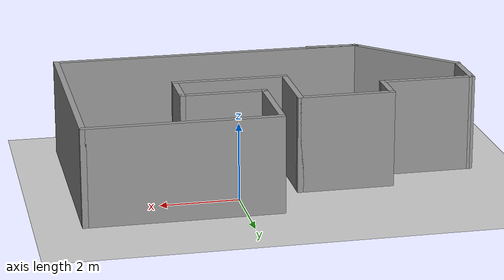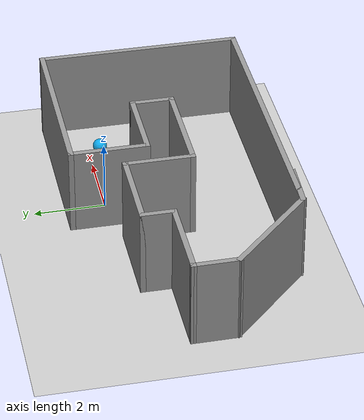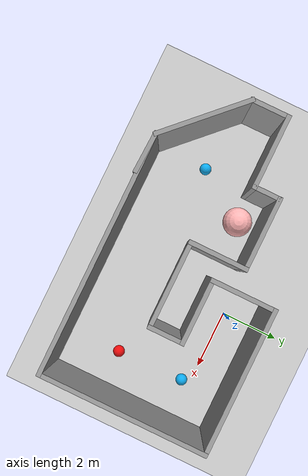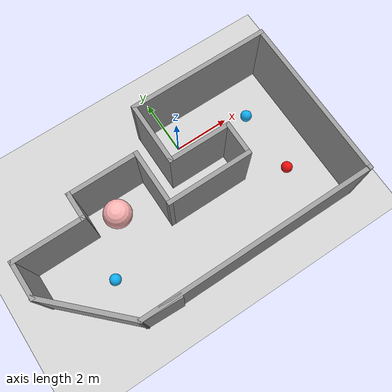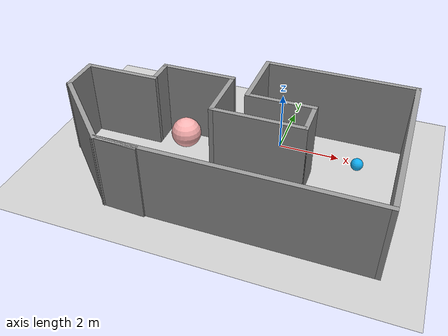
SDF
<sdf version="1.6">
 <world name="default">
  <light name="sun" type="directional">
   <pose>0 0 10 0 -0 0</pose>
   <diffuse>0.8 0.8 0.8 1</diffuse>
   <specular>0.2 0.2 0.2 1</specular>
   <attenuation>
    <range>1000</range>
    <constant>0.9</constant>
    <linear>0.01</linear>
    <quadratic>0.001</quadratic>
   </attenuation>
   <direction>-0.5 0.1 -0.9</direction>
  </light>
  <model name="ground_plane">
   <static>1</static>
   <link name="link">
    <collision name="collision">
     <geometry><plane><normal>0 0 1</normal><size>100 100</size></plane></geometry>
     <surface>
      <contact><collide_bitmask>65535</collide_bitmask></contact>
      <friction><ode><mu>100</mu><mu2>50</mu2></ode></friction>
     </surface>
    </collision>
    <visual name="visual">
     <cast_shadows>0</cast_shadows>
     <geometry><plane><normal>0 0 1</normal><size>100 100</size></plane></geometry>
     <material>
      <script><uri>file://media/materials/scripts/gazebo.material</uri><name>Gazebo/Grey</name></script>
     </material>
    </visual>
   </link>
  </model>
  <gravity>0 0 -9.8</gravity>
  <magnetic_field>6e-06 2.3e-05 -4.2e-05</magnetic_field>
  <atmosphere type="adiabatic"/>
  <physics name="default_physics" default="0" type="ode">
   <max_step_size>0.001</max_step_size>
   <real_time_factor>1</real_time_factor>
   <real_time_update_rate>1000</real_time_update_rate>
  </physics>
  <scene><ambient>0.4 0.4 0.4 1</ambient><background>0.7 0.7 0.7 1</background><shadows>1</shadows></scene>
  <spherical_coordinates>
   <surface_model>EARTH_WGS84</surface_model>
   <latitude_deg>0</latitude_deg>
   <longitude_deg>0</longitude_deg>
   <elevation>0</elevation>
   <heading_deg>0</heading_deg>
  </spherical_coordinates>
  <model name="closed_building">
   <pose>-1.17541 -1.76635 0 0 -0 0</pose>
   <link name="Wall_0">
    <collision name="Wall_0_Collision">
     <geometry><box><size>3.25 0.15 2.5</size></box></geometry>
     <pose>0 0 1.25 0 -0 0</pose>
    </collision>
    <visual name="Wall_0_Visual">
     <pose>0 0 1.25 0 -0 0</pose>
     <geometry><box><size>3.25 0.15 2.5</size></box></geometry>
     <material>
      <script><uri>file://media/materials/scripts/gazebo.material</uri><name>Gazebo/Grey</name></script>
      <ambient>1 1 1 1</ambient>
     </material>
     <meta><layer>0</layer></meta>
    </visual>
    <pose>-4.03447 -1.67669 0 0 0 -0.785398</pose>
   </link>
   <link name="Wall_10">
    <collision name="Wall_10_Collision">
     <geometry><box><size>2 0.15 2.5</size></box></geometry>
     <pose>0 0 1.25 0 -0 0</pose>
    </collision>
    <visual name="Wall_10_Visual">
     <pose>0 0 1.25 0 -0 0</pose>
     <geometry><box><size>2 0.15 2.5</size></box></geometry>
     <material>
      <script><uri>file://media/materials/scripts/gazebo.material</uri><name>Gazebo/Grey</name></script>
      <ambient>1 1 1 1</ambient>
     </material>
     <meta><layer>0</layer></meta>
    </visual>
    <pose>-0.438452 0.552296 0 0 -0 1.5708</pose>
   </link>
   <link name="Wall_11">
    <collision name="Wall_11_Collision">
     <geometry><box><size>2.5 0.15 2.5</size></box></geometry>
     <pose>0 0 1.25 0 -0 0</pose>
    </collision>
    <visual name="Wall_11_Visual">
     <pose>0 0 1.25 0 -0 0</pose>
     <geometry><box><size>2.5 0.15 2.5</size></box></geometry>
     <material>
      <script><uri>file://media/materials/scripts/gazebo.material</uri><name>Gazebo/Grey</name></script>
      <ambient>1 1 1 1</ambient>
     </material>
     <meta><layer>0</layer></meta>
    </visual>
    <pose>-1.61345 1.4773 0 0 -0 3.14159</pose>
   </link>
   <link name="Wall_12">
    <collision name="Wall_12_Collision">
     <geometry><box><size>1 0.15 2.5</size></box></geometry>
     <pose>0 0 1.25 0 -0 0</pose>
    </collision>
    <visual name="Wall_12_Visual">
     <pose>0 0 1.25 0 -0 0</pose>
     <geometry><box><size>1 0.15 2.5</size></box></geometry>
     <material>
      <script><uri>file://media/materials/scripts/gazebo.material</uri><name>Gazebo/Grey</name></script>
      <ambient>1 1 1 1</ambient>
     </material>
     <meta><layer>0</layer></meta>
    </visual>
    <pose>-2.78845 1.0523 0 0 0 -1.5708</pose>
   </link>
   <link name="Wall_13">
    <collision name="Wall_13_Collision">
     <geometry><box><size>2.5 0.15 2.5</size></box></geometry>
     <pose>0 0 1.25 0 -0 0</pose>
    </collision>
    <visual name="Wall_13_Visual">
     <pose>0 0 1.25 0 -0 0</pose>
     <geometry><box><size>2.5 0.15 2.5</size></box></geometry>
     <material>
      <script><uri>file://media/materials/scripts/gazebo.material</uri><name>Gazebo/Grey</name></script>
      <ambient>1 1 1 1</ambient>
     </material>
     <meta><layer>0</layer></meta>
    </visual>
    <pose>-3.96345 0.627296 0 0 -0 3.14159</pose>
   </link>
   <link name="Wall_14">
    <collision name="Wall_14_Collision">
     <geometry><box><size>1.358 0.15 2.5</size></box></geometry>
     <pose>0 0 1.25 0 -0 0</pose>
    </collision>
    <visual name="Wall_14_Visual">
     <pose>0 0 1.25 0 -0 0</pose>
     <geometry><box><size>1.358 0.15 2.5</size></box></geometry>
     <material>
      <script><uri>file://media/materials/scripts/gazebo.material</uri><name>Gazebo/Grey</name></script>
      <ambient>1 1 1 1</ambient>
     </material>
     <meta><layer>0</layer></meta>
    </visual>
    <pose>-5.13447 0.023312 0 0 0 -1.5642</pose>
   </link>
   <link name="Wall_2">
    <collision name="Wall_2_Collision">
     <geometry><box><size>1.42053 0.15 2.5</size></box></geometry>
     <pose>0 0 1.25 0 -0 0</pose>
    </collision>
    <visual name="Wall_2_Visual">
     <pose>0 0 1.25 0 -0 0</pose>
     <geometry><box><size>1.42053 0.15 2.5</size></box></geometry>
     <material>
      <script><uri>file://media/materials/scripts/gazebo.material</uri><name>Gazebo/Grey</name></script>
      <ambient>1 1 1 1</ambient>
     </material>
     <meta><layer>0</layer></meta>
    </visual>
    <pose>-2.30371 -2.79851 0 0 -0 3.10096</pose>
   </link>
   <link name="Wall_3">
    <collision name="Wall_3_Collision">
     <geometry><box><size>8.25 0.15 2.5</size></box></geometry>
     <pose>0 0 1.25 0 -0 0</pose>
    </collision>
    <visual name="Wall_3_Visual">
     <pose>0 0 1.25 0 -0 0</pose>
     <geometry><box><size>8.25 0.15 2.5</size></box></geometry>
     <material>
      <script><uri>file://media/materials/scripts/gazebo.material</uri><name>Gazebo/Grey</name></script>
      <ambient>1 1 1 1</ambient>
     </material>
     <meta><layer>0</layer></meta>
    </visual>
    <pose>1.11155 -2.7727 0 0 -0 0</pose>
   </link>
   <link name="Wall_4">
    <collision name="Wall_4_Collision">
     <geometry><box><size>5.75 0.15 2.5</size></box></geometry>
     <pose>0 0 1.25 0 -0 0</pose>
    </collision>
    <visual name="Wall_4_Visual">
     <pose>0 0 1.25 0 -0 0</pose>
     <geometry><box><size>5.75 0.15 2.5</size></box></geometry>
     <material>
      <script><uri>file://media/materials/scripts/gazebo.material</uri><name>Gazebo/Grey</name></script>
      <ambient>1 1 1 1</ambient>
     </material>
     <meta><layer>0</layer></meta>
    </visual>
    <pose>5.16155 0.027296 0 0 -0 1.5708</pose>
   </link>
   <link name="Wall_5">
    <collision name="Wall_5_Collision">
     <geometry><box><size>5 0.15 2.5</size></box></geometry>
     <pose>0 0 1.25 0 -0 0</pose>
    </collision>
    <visual name="Wall_5_Visual">
     <pose>0 0 1.25 0 -0 0</pose>
     <geometry><box><size>5 0.15 2.5</size></box></geometry>
     <material>
      <script><uri>file://media/materials/scripts/gazebo.material</uri><name>Gazebo/Grey</name></script>
      <ambient>1 1 1 1</ambient>
     </material>
     <meta><layer>0</layer></meta>
    </visual>
    <pose>2.73655 2.8273 0 0 -0 3.14159</pose>
   </link>
   <link name="Wall_6">
    <collision name="Wall_6_Collision">
     <geometry><box><size>2.25 0.15 2.5</size></box></geometry>
     <pose>0 0 1.25 0 -0 0</pose>
    </collision>
    <visual name="Wall_6_Visual">
     <pose>0 0 1.25 0 -0 0</pose>
     <geometry><box><size>2.25 0.15 2.5</size></box></geometry>
     <material>
      <script><uri>file://media/materials/scripts/gazebo.material</uri><name>Gazebo/Grey</name></script>
      <ambient>1 1 1 1</ambient>
     </material>
     <meta><layer>0</layer></meta>
    </visual>
    <pose>0.311548 1.7773 0 0 0 -1.5708</pose>
   </link>
   <link name="Wall_7">
    <collision name="Wall_7_Collision">
     <geometry><box><size>2.25 0.15 2.5</size></box></geometry>
     <pose>0 0 1.25 0 -0 0</pose>
    </collision>
    <visual name="Wall_7_Visual">
     <pose>0 0 1.25 0 -0 0</pose>
     <geometry><box><size>2.25 0.15 2.5</size></box></geometry>
     <material>
      <script><uri>file://media/materials/scripts/gazebo.material</uri><name>Gazebo/Grey</name></script>
      <ambient>1 1 1 1</ambient>
     </material>
     <meta><layer>0</layer></meta>
    </visual>
    <pose>1.36155 0.727296 0 0 -0 0</pose>
   </link>
   <link name="Wall_8">
    <collision name="Wall_8_Collision">
     <geometry><box><size>1.25 0.15 2.5</size></box></geometry>
     <pose>0 0 1.25 0 -0 0</pose>
    </collision>
    <visual name="Wall_8_Visual">
     <pose>0 0 1.25 0 -0 0</pose>
     <geometry><box><size>1.25 0.15 2.5</size></box></geometry>
     <material>
      <script><uri>file://media/materials/scripts/gazebo.material</uri><name>Gazebo/Grey</name></script>
      <ambient>1 1 1 1</ambient>
     </material>
     <meta><layer>0</layer></meta>
    </visual>
    <pose>2.41155 0.177296 0 0 0 -1.5708</pose>
   </link>
   <link name="Wall_9">
    <collision name="Wall_9_Collision">
     <geometry><box><size>3 0.15 2.5</size></box></geometry>
     <pose>0 0 1.25 0 -0 0</pose>
    </collision>
    <visual name="Wall_9_Visual">
     <pose>0 0 1.25 0 -0 0</pose>
     <geometry><box><size>3 0.15 2.5</size></box></geometry>
     <material>
      <script><uri>file://media/materials/scripts/gazebo.material</uri><name>Gazebo/Grey</name></script>
      <ambient>1 1 1 1</ambient>
     </material>
     <meta><layer>0</layer></meta>
    </visual>
    <pose>0.986548 -0.372704 0 0 -0 3.14159</pose>
   </link>
   <static>1</static>
  </model>
  <audio><device>default</device></audio>
  <model name="unit_sphere_blue_small_new">
   <link name="link">
    <inertial>
     <mass>1</mass>
     <inertia><ixx>0.1</ixx><ixy>0</ixy><ixz>0</ixz><iyy>0.1</iyy><iyz>0</iyz><izz>0.1</izz></inertia>
    </inertial>
    <pose>-0.259583 0.271233 -0.289399 0 -0 0</pose>
    <visual name="visual">
     <geometry><sphere><radius>0.2</radius></sphere></geometry>
     <material>
      <script><name>Gazebo/Grey</name><uri>file://media/materials/scripts/gazebo.material</uri></script>
      <ambient>1 0.3 0.3 1</ambient>
      <shader type="vertex"><normal_map>__default__</normal_map></shader>
      <diffuse>0 0.7 1 1</diffuse>
      <specular>0 0.01 1 1</specular>
      <emissive>0 0 1 1</emissive>
     </material>
     <transparency>0.11</transparency>
    </visual>
    <collision name="collision">
     <geometry><sphere><radius>0.2</radius></sphere></geometry>
     <surface>
      <friction>
       <ode><mu>1</mu><mu2>1</mu2><fdir1>0 0 0</fdir1><slip1>0</slip1><slip2>0</slip2></ode>
       <torsional>
        <coefficient>1</coefficient>
        <patch_radius>0</patch_radius>
        <surface_radius>0</surface_radius>
        <use_patch_radius>1</use_patch_radius>
        <ode><slip>0</slip></ode>
       </torsional>
      </friction>
      <bounce><restitution_coefficient>0</restitution_coefficient><threshold>1e+06</threshold></bounce>
      <contact>
       <collide_without_contact>0</collide_without_contact>
       <collide_without_contact_bitmask>1</collide_without_contact_bitmask>
       <collide_bitmask>1</collide_bitmask>
       <ode>
        <soft_cfm>0</soft_cfm>
        <soft_erp>0.2</soft_erp>
        <kp>1e+13</kp>
        <kd>1</kd>
        <max_vel>0.01</max_vel>
        <min_depth>0</min_depth>
       </ode>
       <bullet>
        <split_impulse>1</split_impulse>
        <split_impulse_penetration_threshold>-0.01</split_impulse_penetration_threshold>
        <soft_cfm>0</soft_cfm>
        <soft_erp>0.2</soft_erp>
        <kp>1e+13</kp>
        <kd>1</kd>
       </bullet>
      </contact>
     </surface>
    </collision>
   </link>
   <static>0</static>
   <pose>2.921 -0.605795 0.486362 0.001723 0.009844 2e-05</pose>
  </model>
  <model name="unit_sphere_red_small_new">
   <link name="link">
    <inertial>
     <mass>1</mass>
     <inertia><ixx>0.1</ixx><ixy>0</ixy><ixz>0</ixz><iyy>0.1</iyy><iyz>0</iyz><izz>0.1</izz></inertia>
    </inertial>
    <pose>-0.259583 0.271233 -0.289399 0 -0 0</pose>
    <visual name="visual">
     <geometry><sphere><radius>0.2</radius></sphere></geometry>
     <material>
      <script><name>Gazebo/Grey</name><uri>file://media/materials/scripts/gazebo.material</uri></script>
      <ambient>1 0 0 0</ambient>
      <shader type="vertex"><normal_map>__default__</normal_map></shader>
      <diffuse>1 0 0 0</diffuse>
      <specular>1 0.01 0.01 1</specular>
      <emissive>1 0 0 0</emissive>
     </material>
     <transparency>0.11</transparency>
    </visual>
    <collision name="collision">
     <geometry><sphere><radius>0.2</radius></sphere></geometry>
     <surface>
      <friction>
       <ode><mu>1</mu><mu2>1</mu2><fdir1>0 0 0</fdir1><slip1>0</slip1><slip2>0</slip2></ode>
       <torsional>
        <coefficient>1</coefficient>
        <patch_radius>0</patch_radius>
        <surface_radius>0</surface_radius>
        <use_patch_radius>1</use_patch_radius>
        <ode><slip>0</slip></ode>
       </torsional>
      </friction>
      <bounce><restitution_coefficient>0</restitution_coefficient><threshold>1e+06</threshold></bounce>
      <contact>
       <collide_without_contact>0</collide_without_contact>
       <collide_without_contact_bitmask>1</collide_without_contact_bitmask>
       <collide_bitmask>1</collide_bitmask>
       <ode>
        <soft_cfm>0</soft_cfm>
        <soft_erp>0.2</soft_erp>
        <kp>1e+13</kp>
        <kd>1</kd>
        <max_vel>0.01</max_vel>
        <min_depth>0</min_depth>
       </ode>
       <bullet>
        <split_impulse>1</split_impulse>
        <split_impulse_penetration_threshold>-0.01</split_impulse_penetration_threshold>
        <soft_cfm>0</soft_cfm>
        <soft_erp>0.2</soft_erp>
        <kp>1e+13</kp>
        <kd>1</kd>
       </bullet>
      </contact>
     </surface>
    </collision>
   </link>
   <static>0</static>
   <pose>2.97519 -2.96173 0.489399 0 -0 0</pose>
  </model>
  <model name="unit_sphere_0">
   <link name="link">
    <inertial>
     <mass>1</mass>
     <inertia><ixx>0.1</ixx><ixy>0</ixy><ixz>0</ixz><iyy>0.1</iyy><iyz>0</iyz><izz>0.1</izz></inertia>
    </inertial>
    <visual name="visual">
     <geometry><sphere><radius>0.5</radius></sphere></geometry>
     <material>
      <script><name>Gazebo/Grey</name><uri>file://media/materials/scripts/gazebo.material</uri></script>
      <ambient>1 0 0 0</ambient>
      <shader type="vertex"><normal_map>__default__</normal_map></shader>
      <diffuse>1 0.7 0.7 1</diffuse>
      <specular>1 0.01 0.01 1</specular>
      <emissive>0 0 0 1</emissive>
     </material>
    </visual>
    <collision name="collision">
     <geometry><sphere><radius>0.5</radius></sphere></geometry>
     <surface>
      <friction>
       <ode><mu>1</mu><mu2>1</mu2><fdir1>0 0 0</fdir1><slip1>0</slip1><slip2>0</slip2></ode>
       <torsional>
        <coefficient>1</coefficient>
        <patch_radius>0</patch_radius>
        <surface_radius>0</surface_radius>
        <use_patch_radius>1</use_patch_radius>
        <ode><slip>0</slip></ode>
       </torsional>
      </friction>
      <bounce><restitution_coefficient>0</restitution_coefficient><threshold>1e+06</threshold></bounce>
      <contact>
       <collide_without_contact>0</collide_without_contact>
       <collide_without_contact_bitmask>1</collide_without_contact_bitmask>
       <collide_bitmask>1</collide_bitmask>
       <ode>
        <soft_cfm>0</soft_cfm>
        <soft_erp>0.2</soft_erp>
        <kp>1e+13</kp>
        <kd>1</kd>
        <max_vel>0.01</max_vel>
        <min_depth>0</min_depth>
       </ode>
       <bullet>
        <split_impulse>1</split_impulse>
        <split_impulse_penetration_threshold>-0.01</split_impulse_penetration_threshold>
        <soft_cfm>0</soft_cfm>
        <soft_erp>0.2</soft_erp>
        <kp>1e+13</kp>
        <kd>1</kd>
       </bullet>
      </contact>
     </surface>
    </collision>
   </link>
   <static>0</static>
   <pose>-3.01398 -0.989237 0.5 0 -0 0</pose>
  </model>
  <model name="unit_sphere_blue_small_new_0">
   <link name="link">
    <inertial>
     <mass>1</mass>
     <inertia><ixx>0.1</ixx><ixy>0</ixy><ixz>0</ixz><iyy>0.1</iyy><iyz>0</iyz><izz>0.1</izz></inertia>
    </inertial>
    <pose>-0.259583 0.271233 -0.289399 0 -0 0</pose>
    <visual name="visual">
     <geometry><sphere><radius>0.2</radius></sphere></geometry>
     <material>
      <script><name>Gazebo/Grey</name><uri>file://media/materials/scripts/gazebo.material</uri></script>
      <ambient>1 0.3 0.3 1</ambient>
      <shader type="vertex"><normal_map>__default__</normal_map></shader>
      <diffuse>0 0.7 1 1</diffuse>
      <specular>0 0.01 1 1</specular>
      <emissive>0 0 1 1</emissive>
     </material>
     <transparency>0.11</transparency>
    </visual>
    <collision name="collision">
     <geometry><sphere><radius>0.2</radius></sphere></geometry>
     <surface>
      <friction>
       <ode><mu>1</mu><mu2>1</mu2><fdir1>0 0 0</fdir1><slip1>0</slip1><slip2>0</slip2></ode>
       <torsional>
        <coefficient>1</coefficient>
        <patch_radius>0</patch_radius>
        <surface_radius>0</surface_radius>
        <use_patch_radius>1</use_patch_radius>
        <ode><slip>0</slip></ode>
       </torsional>
      </friction>
      <bounce><restitution_coefficient>0</restitution_coefficient><threshold>1e+06</threshold></bounce>
      <contact>
       <collide_without_contact>0</collide_without_contact>
       <collide_without_contact_bitmask>1</collide_without_contact_bitmask>
       <collide_bitmask>1</collide_bitmask>
       <ode>
        <soft_cfm>0</soft_cfm>
        <soft_erp>0.2</soft_erp>
        <kp>1e+13</kp>
        <kd>1</kd>
        <max_vel>0.01</max_vel>
        <min_depth>0</min_depth>
       </ode>
       <bullet>
        <split_impulse>1</split_impulse>
        <split_impulse_penetration_threshold>-0.01</split_impulse_penetration_threshold>
        <soft_cfm>0</soft_cfm>
        <soft_erp>0.2</soft_erp>
        <kp>1e+13</kp>
        <kd>1</kd>
       </bullet>
      </contact>
     </surface>
    </collision>
   </link>
   <static>0</static>
   <pose>-3.9503 -3.01402 0.489399 0 -0 0</pose>
  </model>
 </world>
</sdf>
